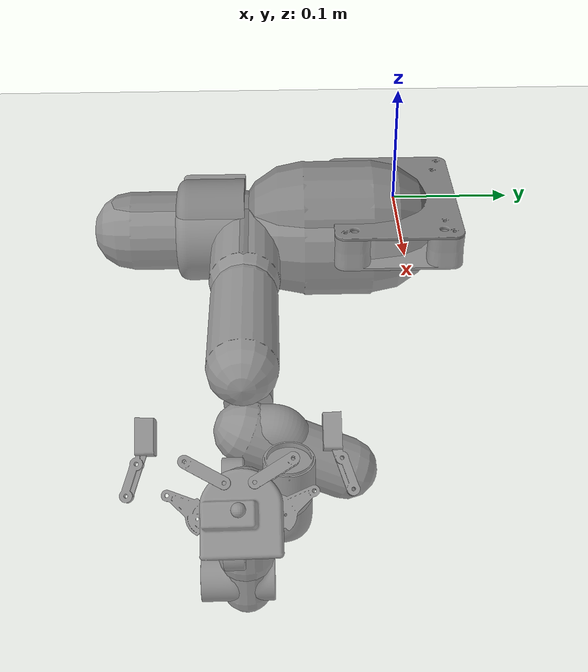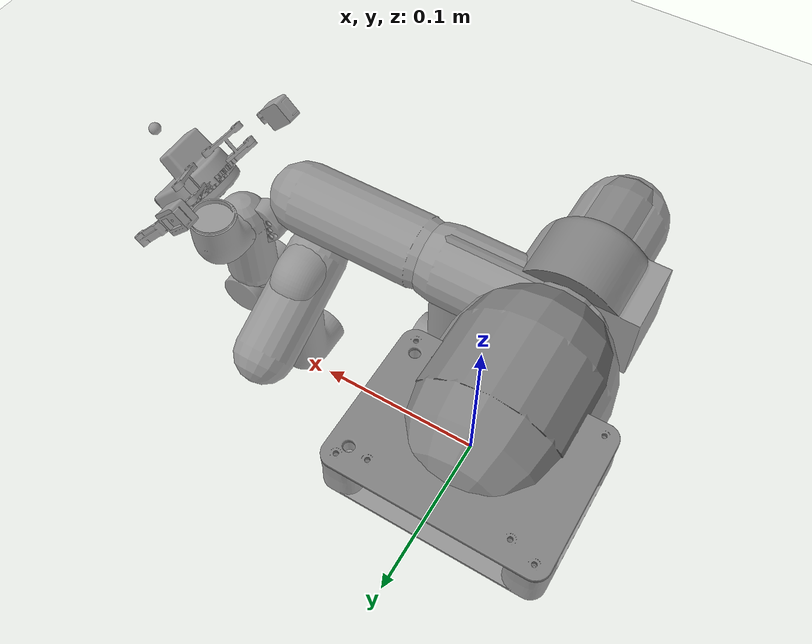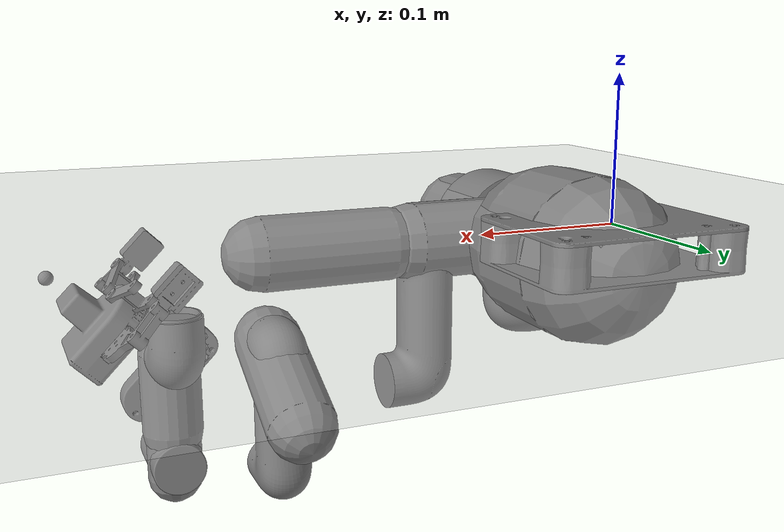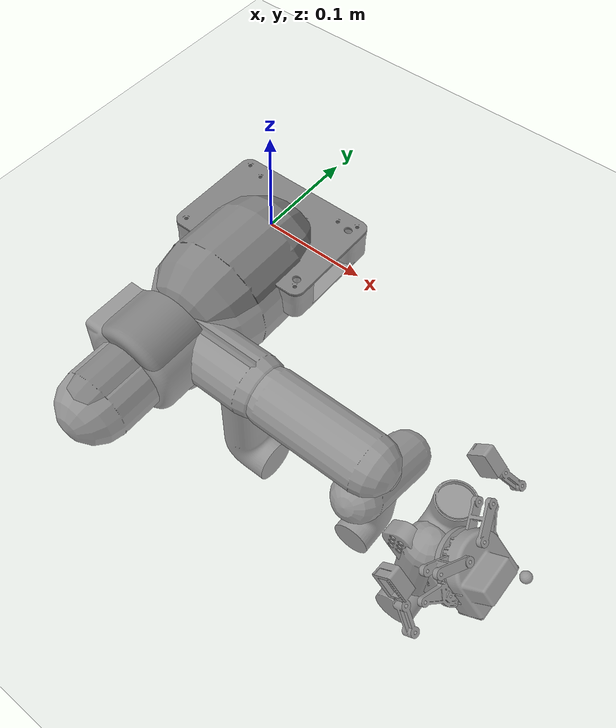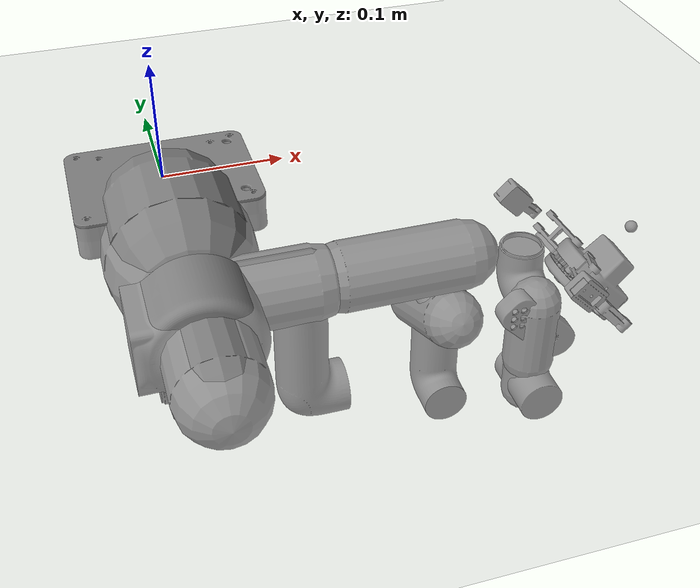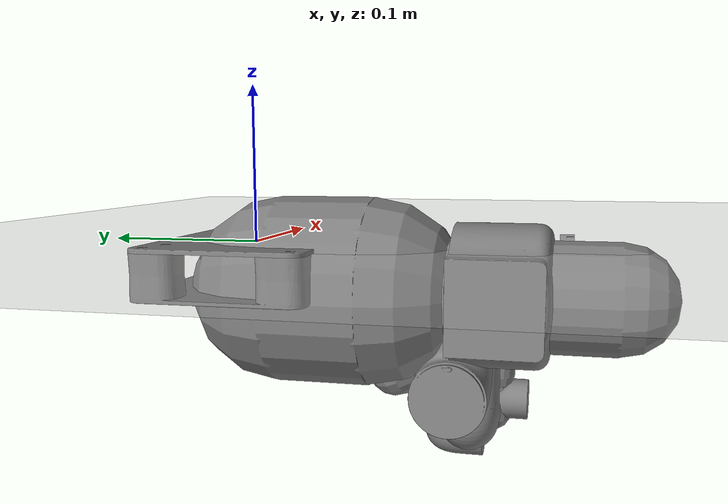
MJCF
<mujoco model="mycobot_280">
  <compiler angle="radian" coordinate="local" meshdir="meshes"/>
  <option gravity="0 0 -9.81" timestep="0.002" integrator="RK4"/>

  <!-- ================= DEFAULTS ================= -->
  <default>
    <!-- Visual meshes -->
    <default class="visual">
      <geom type="mesh" contype="0" conaffinity="0" density="50"/>
    </default>

    <!-- Collision capsules -->
    <default class="coll">
      <geom type="capsule"
            contype="1"
            conaffinity="1"
            friction="1 0.005 0.0001"
            density="300"/>
    </default>

    <joint damping="5" armature="0.05"/>
  </default>

  <!-- ================= ASSETS ================= -->
  <asset>
    <mesh name="mycobot_base" file="mycobot_base.stl"/>
    <mesh name="joint1" file="joint1.stl"/>
    <mesh name="joint2" file="joint2.stl"/>
    <mesh name="joint3" file="joint3.stl"/>
    <mesh name="joint4" file="joint4.stl"/>
    <mesh name="joint5" file="joint5.stl"/>
    <mesh name="joint6" file="joint6.stl"/>
    <mesh name="joint7" file="joint7.stl"/>

    <mesh name="camera" file="camera.stl"/>

    <mesh name="gripper_base" file="gripper_base.stl"/>
    <mesh name="gripper_left1" file="gripper_left1.stl"/>
    <mesh name="gripper_left2" file="gripper_left2.stl"/>
    <mesh name="gripper_left3" file="gripper_left3.stl"/>
    <mesh name="gripper_right1" file="gripper_right1.stl"/>
    <mesh name="gripper_right2" file="gripper_right2.stl"/>
    <mesh name="gripper_right3" file="gripper_right3.stl"/>
  </asset>

  <!-- ================= WORLD ================= -->
  <worldbody>

    <!-- Floor -->
    <geom name="floor"
          type="plane"
          pos="0 0 0"
          size="2 2 0.1"
          rgba="0.8 0.8 0.8 1"
          contype="1"
          conaffinity="1"/>

    <!-- Base -->
    <body name="mycobot_base" pos="0 0 -0.03" euler="1.5708 0 0">
      <geom class="visual" mesh="mycobot_base"/>

      <!-- Base collision -->
      <geom class="coll" fromto="0 0 0.02  0 0 0.08" size="0.06"/>

      <!-- Link 1 -->
      <body name="link1" pos="0 0 0.13156" euler="0 0 -1.5708">
        <joint name="joint1" type="hinge" axis="0 0 1" range="-2.93 2.93"/>
        <geom class="visual" mesh="joint1"/>
        <geom class="coll" fromto="0 0 0   0 0 0.10" size="0.035"/>

        <!-- Link 2 -->
        <body name="link2" euler="0 1.5708 -1.5708">
          <joint name="joint2" type="hinge" axis="0 0 1" range="-2.36 2.36"/>
          <geom class="visual" mesh="joint2"/>
          <geom class="coll" fromto="0 0 0   -0.09 0 0" size="0.03"/>

          <!-- Link 3 -->
          <body name="link3" pos="-0.1104 0 0">
            <joint name="joint3" type="hinge" axis="0 0 1" range="-2.62 2.62"/>
            <geom class="visual" mesh="joint3"/>
            <geom class="coll" fromto="0 0 0   -0.10 0 0" size="0.028"/>

            <!-- Link 4 -->
            <body name="link4" pos="-0.096 0 0.06462" euler="0 0 -1.5708">
              <joint name="joint4" type="hinge" axis="0 0 1" range="-2.53 2.53"/>
              <geom class="visual" mesh="joint4"/>
              <geom class="coll" fromto="0 0 0   -0.08 0 0.04" size="0.025"/>

              <!-- Link 5 -->
              <body name="link5" pos="0 -0.07318 0" euler="1.5708 -1.5708 0">
                <joint name="joint5" type="hinge" axis="0 0 1" range="-2.88 2.88"/>
                <geom class="visual" mesh="joint5"/>
                <geom class="coll" fromto="0 0 0   0 0.06 0" size="0.022"/>

                <!-- Link 6 -->
                <body name="link6" pos="0 0.0456 0" euler="-1.5708 0 0">
                  <joint name="joint6" type="hinge" axis="0 0 1" range="-3.14 3.14"/>
                  <geom class="visual" mesh="joint6"/>
                  <geom class="coll" fromto="0 0 0   0 0 0.05" size="0.02"/>

                  <!-- Link 7 -->
                  <body name="link7" pos="0 0 -0.038">
										<joint name="joint7" type="hinge" axis="0 0 1" range="-3.14159 3.14159"/>
										<geom class="visual" mesh="joint7"/>

                    <!-- Camera -->
                    <body name="camera" pos="0 0 0.01" euler="1.579 0 -2.3562">
                      <geom class="visual" mesh="camera"/>

                      <!-- Gripper base (NO COLLISIONS) -->
                      <body name="gripper_base" pos="0 0.041 0" euler="0 -1.57 0">
                        <geom class="visual" mesh="gripper_base"/>

                        <!-- Gripper bodies: visual only -->
                        <body name="gripper_left3" pos="-0.012 -0.002 0">
                          <joint name="gripper_controller" type="hinge" axis="0 0 1" range="-0.74 0.15"/>
                          <geom class="visual" mesh="gripper_left3"/>

                          <body name="gripper_left1" pos="-0.027 0.016 0">
                            <joint name="gripper_left1_joint" type="hinge" axis="0 0 1"/>
                            <geom class="visual" mesh="gripper_left1"/>
                          </body>
                        </body>

                        <body name="gripper_left2" pos="-0.005 0.0195 0">
                          <joint name="gripper_left2_joint" type="hinge" axis="0 0 1"/>
                          <geom class="visual" mesh="gripper_left2"/>
                        </body>

                        <body name="gripper_right3" pos="0.012 -0.002 0">
                          <joint name="gripper_right3_joint" type="hinge" axis="0 0 1"/>
                          <geom class="visual" mesh="gripper_right3"/>

                          <body name="gripper_right1" pos="0.027 0.016 0">
                            <joint name="gripper_right1_joint" type="hinge" axis="0 0 1"/>
                            <geom class="visual" mesh="gripper_right1"/>
                          </body>
                        </body>

                        <body name="gripper_right2" pos="0.005 0.0195 0">
                          <joint name="gripper_right2_joint" type="hinge" axis="0 0 1"/>
                          <geom class="visual" mesh="gripper_right2"/>
                        </body>

                        <site name="ee" pos="0 0.07 0" size="0.005"/>
                      </body>
                    </body>
                  </body>
                </body>
              </body>
            </body>
          </body>
        </body>
      </body>
    </body>
  </worldbody>

  <!-- ================= CONSTRAINTS ================= -->
  <equality>
    <weld body1="mycobot_base" body2="world"/>

    <joint joint1="gripper_controller" joint2="gripper_left2_joint" polycoef="0 1 0 0 0"/>
    <joint joint1="gripper_controller" joint2="gripper_left1_joint" polycoef="0 -1 0 0 0"/>
    <joint joint1="gripper_controller" joint2="gripper_right3_joint" polycoef="0 -1 0 0 0"/>
    <joint joint1="gripper_controller" joint2="gripper_right2_joint" polycoef="0 -1 0 0 0"/>
    <joint joint1="gripper_controller" joint2="gripper_right1_joint" polycoef="0 1 0 0 0"/>
  </equality>

  <!-- ================= ACTUATORS ================= -->
  <actuator>
    <motor joint="joint1" gear="50"/>
    <motor joint="joint2" gear="50"/>
    <motor joint="joint3" gear="50"/>
    <motor joint="joint4" gear="30"/>
    <motor joint="joint5" gear="20"/>
    <motor joint="joint6" gear="10"/>
    <motor joint="gripper_controller" gear="10"/>
  </actuator>
</mujoco>
